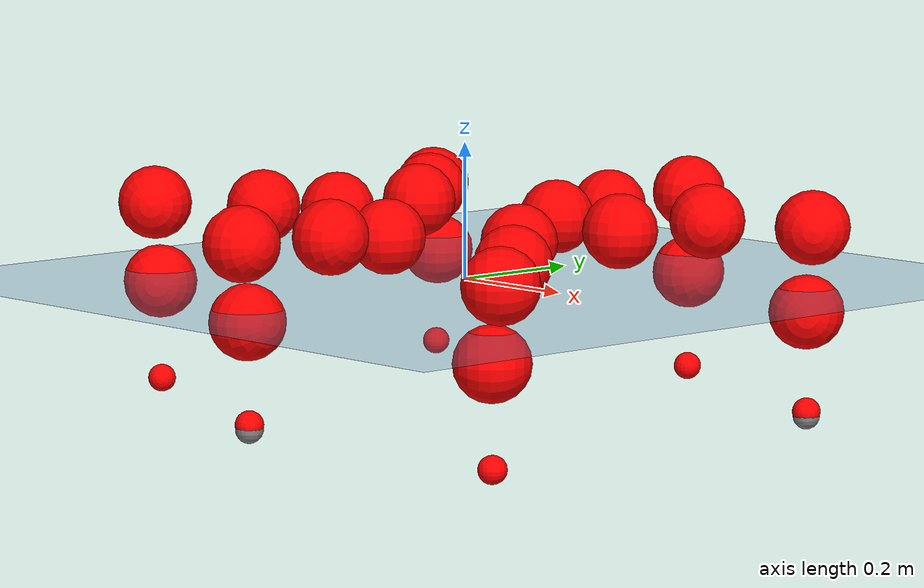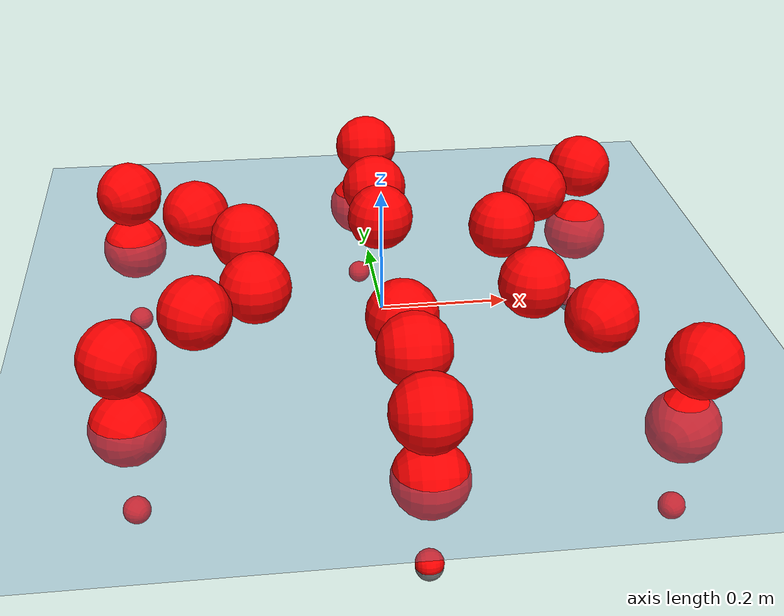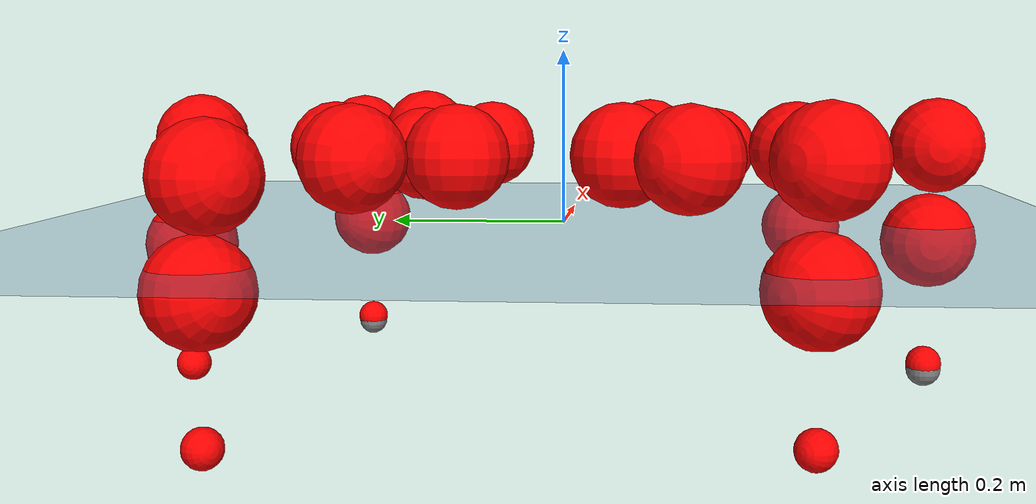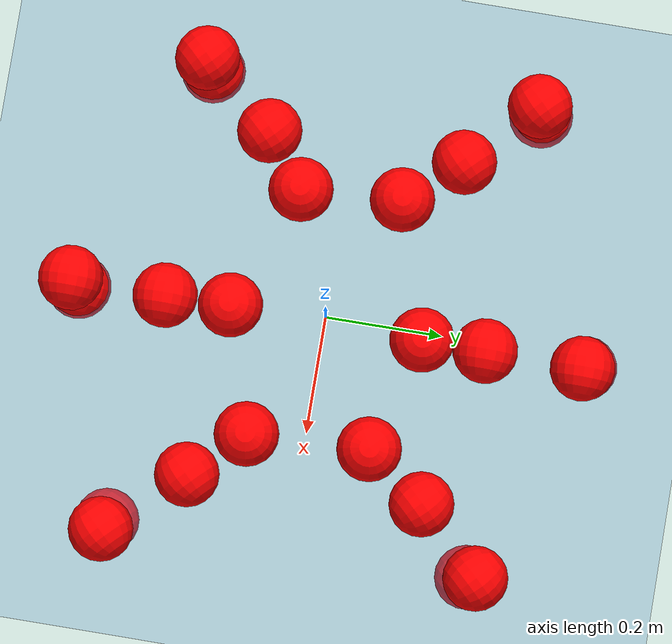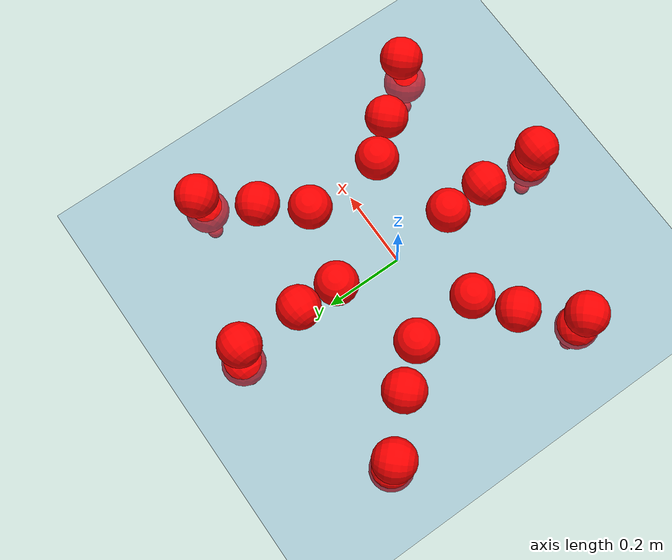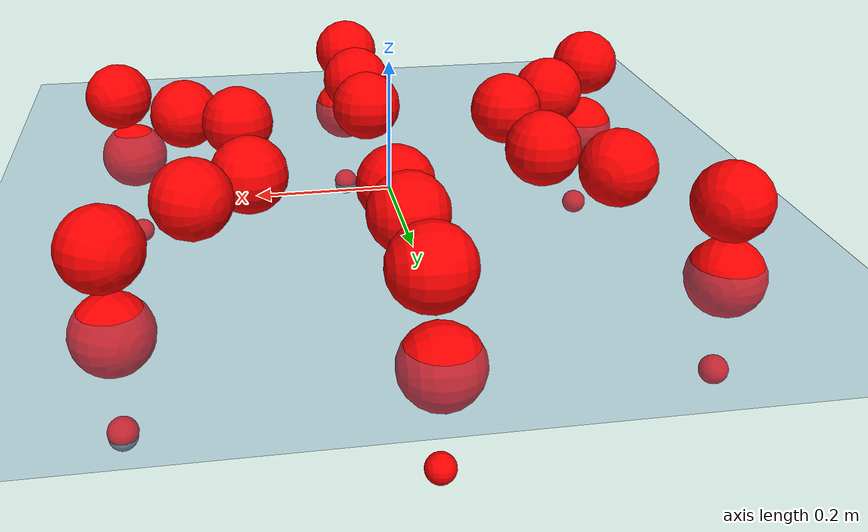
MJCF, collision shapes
<mujoco model="Golem">
  <compiler angle="radian" assetdir="assets" balanceinertia="true" inertiafromgeom="false"/>

  <option timestep="0.005" density="1.2" viscosity="2e-05"/>

  <size nkey="1"/>

  <visual>
    <quality shadowsize="8192"/>
    <map shadowclip="0.5"/>
  </visual>

  <default>
    <default class="/">
      <joint armature="0.01" damping="0.01" frictionloss="0.01"/>
      <geom contype="0" conaffinity="0" group="1" solref="-1000 -80"/>
      <site size="0.01 0.005 0.005" group="5"/>
      <general forcelimited="true" biastype="affine" gainprm="25" biasprm="0 -25 -0.5"/>
      <default class="visual">
        <geom type="mesh" group="2"/>
      </default>
      <default class="collision">
        <geom group="3"/>
      </default>
      <default class="foot">
        <geom size="0.01 0 0" condim="6" group="4" priority="1" solimp="0.015 1 0.01"/>
      </default>
      <default class="reward_collision_sphere">
        <geom group="5" rgba="1 0 0 1"/>
      </default>
    </default>
  </default>

  <asset>
    <texture type="skybox" colorspace="auto" name="//unnamed_texture_0" builtin="gradient" rgb1="0.95 0.95 0.95" rgb2="0.95 0.95 0.95" width="100" height="600"/>
    <texture type="2d" colorspace="auto" name="texplane" builtin="checker" rgb1="0.345 0.575 0.748" rgb2="0.345 0.575 0.748" markrgb="1 1 1" width="512" height="512"/>
    <material name="MatPlane" class="/" texture="texplane" texuniform="true" texrepeat="2 2" specular="0.9"/>
    <mesh name="body" class="/" file="body.stl" scale="0.001 0.001 0.001"/>
    <mesh name="coxa" class="/" file="coxa.stl" scale="0.001 0.001 0.001"/>
    <mesh name="femur" class="/" file="femur.stl" scale="0.001 0.001 0.001"/>
    <mesh name="tibia" class="/" file="tibia.stl" scale="0.001 0.001 0.001"/>
    <mesh name="tarsus" class="/" file="tarsus.stl" scale="0.001 0.001 0.001"/>
  </asset>

  <worldbody>
    <geom name="floor" class="/" size="100 100 0.125" type="plane" group="0" material="MatPlane"/>
    <light name="toplight_shadow" class="/" pos="0 0 5" dir="0.0990148 0.0990148 -0.990148" type="directional" ambient="0.04 0.04 0.04" diffuse="0.55 0.55 0.55" specular="0.12 0.12 0.12"/>
    <light name="toplight_fill" class="/" pos="0 0 5" dir="0.0990148 0.0990148 -0.990148" type="directional" castshadow="false" ambient="0.04 0.04 0.04" diffuse="0.3 0.3 0.3" specular="0.08 0.08 0.08"/>
    <body name="trunk" pos="0.0089824 0.0081701 -0.00298483" quat="0.999995 0.00259873 0.00129874 0.00127495">
      <inertial pos="-0.00885689 -0.00222404 0.0139269" quat="0.999123 -0.000715131 -0.0112811 0.0403271" mass="8.8508" diaginertia="0.0419637 0.0612467 0.0275219"/>
      <joint name="//unnamed_joint_0" type="free"/>
      <geom name="//unnamed_geom_1" class="/" pos="0 0 0.0819838" quat="1 0 0 0" type="mesh" rgba="0.9 0.9 0.9 1" mesh="body"/>
      <site name="imu" class="/" pos="0.11994 -0.0447738 0.124984" size="0.0137185"/>
      <camera name="track" class="/" pos="0 -2.95072 0" quat="0.707107 0.707107 0 0" mode="trackcom"/>
      <camera name="ego_camera" class="/" pos="0.176696 0 0.1281" quat="-0.5 -0.5 0.5 0.5"/>
      <body name="coxa_RR" pos="-0.236785 -0.111012 0.0937077" quat="0.381367 0.00191861 0.000456371 -0.924421">
        <inertial pos="-0.000440734 -0.00249341 -0.00517469" quat="0.999995 0.00115787 0.00257991 0.00148786" mass="0.491397" diaginertia="0.0488202 0.065567 0.0389558"/>
        <joint name="coxa_joint_RR" class="/" pos="0 0 0" axis="-0.000746384 -0.00141379 -0.999999" range="-3.11699 3.26101" armature="0.0157109" damping="0.0283975" frictionloss="0.0145926"/>
        <geom name="//unnamed_geom_2" class="/" type="mesh" rgba="0.2 0.2 0.2 1" mesh="coxa"/>
        <geom name="//unnamed_geom_3" class="reward_collision_sphere" size="0.0548741" pos="-0.040776 0 0"/>
        <body name="femur_RR" pos="0.0705553 -0.01497 0.00206979" quat="0.499677 -0.500121 0.500479 0.499722">
          <inertial pos="0.0141086 0.000727756 0.0152317" quat="0.997399 0.0610426 -0.034489 0.0167459" mass="0.58235" diaginertia="0.0526498 0.079865 0.0400187"/>
          <joint name="femur_joint_RR" class="/" pos="0 0 0" axis="-0.0263568 0.0228129 -0.999392" range="-3.05308 3.11733" armature="0.0139531" damping="0" frictionloss="0.0144546"/>
          <geom name="//unnamed_geom_4" class="/" type="mesh" rgba="0.9 0.9 0.9 1" mesh="femur"/>
          <geom name="//unnamed_geom_5" class="reward_collision_sphere" size="0.0548741"/>
          <body name="tibia_RR" pos="-0.00743032 -0.160451 0.0137964" quat="-0.00032307 1 -0.000348998 0.000173176">
            <inertial pos="0.000324657 0.000432328 0.0118832" quat="0.999181 0.00412075 0.0190835 -0.0354507" mass="0.382555" diaginertia="0.0386795 0.0490856 0.0280191"/>
            <joint name="tibia_joint_RR" class="/" pos="0 0 0" axis="0.0541295 0.0107245 0.998476" stiffness="0.0380529" range="-2.97381 3.14191" armature="0.0183857" damping="0.0141588" frictionloss="0.0209259"/>
            <geom name="//unnamed_geom_6" class="/" type="mesh" rgba="0.2 0.2 0.2 1" mesh="tibia"/>
            <geom name="//unnamed_geom_7" class="reward_collision_sphere" size="0.0548741"/>
            <body name="tarsus_RR" pos="0.118435 -0.00590689 0.0021846" quat="1 -9.37776e-05 6.24168e-05 0.00021412">
              <inertial pos="0.0877981 -6.40104e-05 0.000852318" quat="0.44573 0.51539 0.543735 0.489949" mass="0.462192" diaginertia="0.0473781 0.0775479 0.0325"/>
              <joint name="tarsus_joint_RR" class="/" pos="0 0 0" axis="-0.0484085 0.0552631 0.997298" range="-3.12061 3.31569" armature="0.0178694" damping="0.0160942" frictionloss="0.0107452"/>
              <geom name="//unnamed_geom_8" class="/" type="mesh" rgba="0.9 0.9 0.9 1" mesh="tarsus"/>
              <geom name="foot_1" class="foot" size="0.0145342" pos="0.15223 0 0" quat="0 -0.707107 0 0.707107"/>
              <geom name="//unnamed_geom_10" class="reward_collision_sphere" size="0.0548741"/>
              <geom name="//unnamed_geom_11" class="reward_collision_sphere" size="0.0205778" pos="0.146114 0 0"/>
              <site name="foot_1" class="foot" pos="0.15223 0 0" quat="0 -0.707107 0 0.707107" size="0.0137185"/>
            </body>
          </body>
        </body>
      </body>
      <body name="coxa_RM" pos="0.00230538 -0.208748 0.0811369" quat="0.706995 0.0068309 -0.00272045 -0.70718">
        <inertial pos="0.0111522 0.000125756 0.0129495" quat="0.998704 0.00256136 -0.0339107 0.0378708" mass="0.508328" diaginertia="0.0603635 0.0696796 0.0392999"/>
        <joint name="coxa_joint_RM" class="/" pos="0 0 0" axis="-0.00457327 -0.00642613 -0.999969" range="-3.07615 3.17548" armature="0.0121386" damping="0.0186696" frictionloss="0.0180682"/>
        <geom name="//unnamed_geom_12" class="/" type="mesh" rgba="0.2 0.2 0.2 1" mesh="coxa"/>
        <geom name="//unnamed_geom_13" class="reward_collision_sphere" size="0.0548741" pos="-0.040776 0 0"/>
        <body name="femur_RM" pos="0.0694384 0.00251873 0.0105457" quat="0.501985 -0.500139 0.501913 0.495939">
          <inertial pos="-0.0132708 0.000624534 -0.000281593" quat="0.997555 -0.00869227 -0.0164338 0.0673695" mass="0.545986" diaginertia="0.0444933 0.0803064 0.035962"/>
          <joint name="femur_joint_RM" class="/" pos="0 0 0" axis="0.0342278 0.0436118 -0.998462" stiffness="0.0401597" range="-3.13968 3.11828" armature="0.010202" damping="0" frictionloss="0.0147759"/>
          <geom name="//unnamed_geom_14" class="/" type="mesh" rgba="0.9 0.9 0.9 1" mesh="femur"/>
          <geom name="//unnamed_geom_15" class="reward_collision_sphere" size="0.0548741"/>
          <body name="tibia_RM" pos="-0.00548432 -0.160822 -0.00194419" quat="-0.000347612 1 -2.04059e-05 0.00050921">
            <inertial pos="0.0140477 -0.00599046 0.0082758" quat="0.99992 0.00613769 -0.00884785 0.00667815" mass="0.441821" diaginertia="0.0381754 0.0746272 0.0384602"/>
            <joint name="tibia_joint_RM" class="/" pos="0 0 0" axis="0.0360677 0.0267605 0.998991" stiffness="0.0174502" range="-3.14672 3.25623" armature="0.0138805" damping="0.0225529" frictionloss="0.0176066"/>
            <geom name="//unnamed_geom_16" class="/" type="mesh" rgba="0.2 0.2 0.2 1" mesh="tibia"/>
            <geom name="//unnamed_geom_17" class="reward_collision_sphere" size="0.0548741"/>
            <body name="tarsus_RM" pos="0.110845 -0.00613674 -0.00284624" quat="1 -0.000202407 3.07326e-05 -0.000257556">
              <inertial pos="0.085123 0.00475151 0.00135053" quat="0.512179 0.502855 0.494087 0.4906" mass="0.47656" diaginertia="0.0501689 0.0649822 0.0282462"/>
              <joint name="tarsus_joint_RM" class="/" pos="0 0 0" axis="0.0330531 -0.040356 0.998639" range="-3.15836 3.15658" armature="0.0141416" damping="0.0027241" frictionloss="0.0130261"/>
              <geom name="//unnamed_geom_18" class="/" type="mesh" rgba="0.9 0.9 0.9 1" mesh="tarsus"/>
              <geom name="foot_2" class="foot" size="0.0201884" pos="0.15223 0 0" quat="0 -0.707107 0 0.707107"/>
              <geom name="//unnamed_geom_20" class="reward_collision_sphere" size="0.0548741"/>
              <geom name="//unnamed_geom_21" class="reward_collision_sphere" size="0.0205778" pos="0.146114 0 0"/>
              <site name="foot_2" class="foot" pos="0.15223 0 0" quat="0 -0.707107 0 0.707107" size="0.0137185"/>
            </body>
          </body>
        </body>
      </body>
      <body name="coxa_RF" pos="0.241066 -0.134458 0.0882905" quat="0.923929 0.000266746 -9.23797e-05 -0.382564">
        <inertial pos="0.0148797 -0.00275367 -0.000145051" quat="0.998344 -0.0433189 -0.0112714 -0.0361408" mass="0.383702" diaginertia="0.0385215 0.0754316 0.0315444"/>
        <joint name="coxa_joint_RF" class="/" pos="0 0 0" axis="0.000670702 0.000169636 -1" range="-3.01487 3.15515" armature="0.00720416" damping="0.0280724" frictionloss="0.0171774"/>
        <geom name="//unnamed_geom_22" class="/" type="mesh" rgba="0.2 0.2 0.2 1" mesh="coxa"/>
        <geom name="//unnamed_geom_23" class="reward_collision_sphere" size="0.0548741" pos="-0.040776 0 0"/>
        <body name="femur_RF" pos="0.0796802 -0.00403512 -0.0130362" quat="0.501457 -0.500626 0.498139 0.499772">
          <inertial pos="-0.00790255 -0.0139906 -0.00751385" quat="0.999982 -0.00366761 -0.00418518 0.0021128" mass="0.583477" diaginertia="0.0418247 0.080896 0.0357171"/>
          <joint name="femur_joint_RF" class="/" pos="0 0 0" axis="0.0339618 -0.0271133 -0.999055" stiffness="0.0682115" range="-3.19096 3.32196" armature="0.0145407" damping="0" frictionloss="0.0164582"/>
          <geom name="//unnamed_geom_24" class="/" type="mesh" rgba="0.9 0.9 0.9 1" mesh="femur"/>
          <geom name="//unnamed_geom_25" class="reward_collision_sphere" size="0.0548741"/>
          <body name="tibia_RF" pos="0.00678328 -0.170106 -0.0106728" quat="0.000414101 1 6.95615e-05 -0.000162654">
            <inertial pos="0.0126385 0.00966391 -0.0115698" quat="0.999214 -0.0142666 -0.00501735 0.0366348" mass="0.456191" diaginertia="0.0462885 0.0694732 0.0348295"/>
            <joint name="tibia_joint_RF" class="/" pos="0 0 0" axis="0.0108414 0.0112677 0.999878" range="-3.15918 3.33618" armature="0.0141829" damping="0.0829811" frictionloss="0.0132597"/>
            <geom name="//unnamed_geom_26" class="/" type="mesh" rgba="0.2 0.2 0.2 1" mesh="tibia"/>
            <geom name="//unnamed_geom_27" class="reward_collision_sphere" size="0.0548741"/>
            <body name="tarsus_RF" pos="0.108492 -0.0127782 0.0122673" quat="0.999989 -0.00417426 -0.00127043 -0.00154027">
              <inertial pos="0.0826106 0.000288941 -3.35141e-05" quat="0.494003 0.497401 0.493381 0.514906" mass="0.475444" diaginertia="0.0420741 0.0564713 0.0387417"/>
              <joint name="tarsus_joint_RF" class="/" pos="0 0 0" axis="-0.0101933 0.025 0.999635" stiffness="0.0211669" range="-2.99113 3.16052" armature="0.0065824" damping="0" frictionloss="0.00345287"/>
              <geom name="//unnamed_geom_28" class="/" type="mesh" rgba="0.9 0.9 0.9 1" mesh="tarsus"/>
              <geom name="foot_3" class="foot" size="0.00686512" pos="0.15223 0 0" quat="0 -0.707107 0 0.707107"/>
              <geom name="//unnamed_geom_30" class="reward_collision_sphere" size="0.0548741"/>
              <geom name="//unnamed_geom_31" class="reward_collision_sphere" size="0.0205778" pos="0.146114 0 0"/>
              <site name="foot_3" class="foot" pos="0.15223 0 0" quat="0 -0.707107 0 0.707107" size="0.0137185"/>
            </body>
          </body>
        </body>
      </body>
      <body name="coxa_LR" pos="-0.246903 0.117852 0.0914613" quat="0.386583 0.00441794 0.00191374 0.922242">
        <inertial pos="0.00245158 -0.00377891 0.0144573" quat="0.998613 0.0392 0.0310758 0.0164304" mass="0.705436" diaginertia="0.0561376 0.0825988 0.039678"/>
        <joint name="coxa_joint_LR" class="/" pos="0 0 0" axis="0.00221811 -0.00396818 -0.99999" range="-3.04859 2.84715" armature="0.0065262" damping="0" frictionloss="0.0236929"/>
        <geom name="//unnamed_geom_32" class="/" type="mesh" rgba="0.2 0.2 0.2 1" mesh="coxa"/>
        <geom name="//unnamed_geom_33" class="reward_collision_sphere" size="0.0548741" pos="-0.040776 0 0"/>
        <body name="femur_LR" pos="0.0809004 -0.00865238 0.00132482" quat="0.499998 -0.499784 0.500138 0.50008">
          <inertial pos="0.000620069 0.00124283 0.00157926" quat="0.999217 -0.0102626 0.0381572 -0.00207675" mass="0.569138" diaginertia="0.05475 0.0622806 0.0372452"/>
          <joint name="femur_joint_LR" class="/" pos="0 0 0" axis="-0.0233983 -0.00294895 0.999722" stiffness="0.0433797" range="-3.15083 3.34868" armature="0.00783803" damping="0" frictionloss="0.0168703"/>
          <geom name="//unnamed_geom_34" class="/" type="mesh" rgba="0.9 0.9 0.9 1" mesh="femur"/>
          <geom name="//unnamed_geom_35" class="reward_collision_sphere" size="0.0548741"/>
          <body name="tibia_LR" pos="0.0113557 -0.160301 0.00444782" quat="0.00362545 0.999986 0.00182134 0.00334319">
            <inertial pos="-0.0086767 -0.0135455 9.75966e-06" quat="0.998527 0.044262 0.00821683 -0.0302859" mass="0.587737" diaginertia="0.0382886 0.0609664 0.0413544"/>
            <joint name="tibia_joint_LR" class="/" pos="0 0 0" axis="0.00535866 0.00498229 -0.999973" range="-3.14856 3.11941" armature="0.0101097" damping="0" frictionloss="0.00834413"/>
            <geom name="//unnamed_geom_36" class="/" type="mesh" rgba="0.2 0.2 0.2 1" mesh="tibia"/>
            <geom name="//unnamed_geom_37" class="reward_collision_sphere" size="0.0548741"/>
            <body name="tarsus_LR" pos="0.107085 0.00521278 0.00707356" quat="0.999995 0.00158258 0.00280225 0.000207494">
              <inertial pos="0.0885749 0.00864205 0.00522824" quat="0.48514 0.521422 0.510582 0.48173" mass="0.629935" diaginertia="0.0570783 0.084248 0.0409922"/>
              <joint name="tarsus_joint_LR" class="/" pos="0 0 0" axis="-0.00685861 -0.00104503 -0.999976" range="-3.08657 3.20352" armature="0.0243617" damping="0.0113689" frictionloss="0.0173314"/>
              <geom name="//unnamed_geom_38" class="/" type="mesh" rgba="0.9 0.9 0.9 1" mesh="tarsus"/>
              <geom name="foot_4" class="foot" size="0.0119025" pos="0.15223 0 0" quat="0.707107 0 -0.707107 0"/>
              <geom name="//unnamed_geom_40" class="reward_collision_sphere" size="0.0548741"/>
              <geom name="//unnamed_geom_41" class="reward_collision_sphere" size="0.0205778" pos="0.146114 0 0"/>
              <site name="foot_4" class="foot" pos="0.15223 0 0" quat="0.707107 0 -0.707107 0" size="0.0137185"/>
            </body>
          </body>
        </body>
      </body>
      <body name="coxa_LM" pos="0.00907113 0.199767 0.0807739" quat="0.708889 0.0010963 0.00736254 0.705281">
        <inertial pos="-0.0114914 0.012553 0.00812721" quat="0.998397 -0.00832855 -0.0251409 -0.0500223" mass="0.501915" diaginertia="0.0478388 0.0615813 0.0312409"/>
        <joint name="coxa_joint_LM" class="/" pos="0 0 0" axis="0.00359049 -0.00761093 -0.999965" range="-3.1473 3.14899" armature="0.00401369" damping="0.0452115" frictionloss="0.0103573"/>
        <geom name="//unnamed_geom_42" class="/" type="mesh" rgba="0.2 0.2 0.2 1" mesh="coxa"/>
        <geom name="//unnamed_geom_43" class="reward_collision_sphere" size="0.0548741" pos="-0.040776 0 0"/>
        <body name="femur_LM" pos="0.0666306 -0.00123638 0.00711264" quat="0.501633 -0.499469 0.502749 0.496124">
          <inertial pos="0.0111251 -0.00101629 0.0126429" quat="0.999172 -0.0092079 -0.0392931 -0.00511914" mass="0.384101" diaginertia="0.0425533 0.0600528 0.0302955"/>
          <joint name="femur_joint_LM" class="/" pos="0 0 0" axis="-0.000961804 0.00150025 0.999998" range="-3.31375 3.05308" armature="0.00719348" damping="0.0392664" frictionloss="0.0142487"/>
          <geom name="//unnamed_geom_44" class="/" type="mesh" rgba="0.9 0.9 0.9 1" mesh="femur"/>
          <geom name="//unnamed_geom_45" class="reward_collision_sphere" size="0.0548741"/>
          <body name="tibia_LM" pos="-0.00863827 -0.164697 -0.00113305" quat="-0.00163398 0.999997 -0.000931747 -0.00130071">
            <inertial pos="-0.0141581 -0.0148055 -0.0152058" quat="0.999995 0.00236888 0.00223475 0.000497817" mass="0.51385" diaginertia="0.0506572 0.0813909 0.0304388"/>
            <joint name="tibia_joint_LM" class="/" pos="0 0 0" axis="-0.0263053 -0.0278904 -0.999265" stiffness="0.049347" range="-3.22657 3.15538" armature="0.00708176" damping="0" frictionloss="0.0208704"/>
            <geom name="//unnamed_geom_46" class="/" type="mesh" rgba="0.2 0.2 0.2 1" mesh="tibia"/>
            <geom name="//unnamed_geom_47" class="reward_collision_sphere" size="0.0548741"/>
            <body name="tarsus_LM" pos="0.12519 0.011882 -0.0109932" quat="0.99999 -0.00094986 0.00301501 0.00322975">
              <inertial pos="0.076012 -0.00609019 -0.00852331" quat="0.504761 0.501948 0.499706 0.493516" mass="0.426843" diaginertia="0.0444842 0.0460916 0.0305272"/>
              <joint name="tarsus_joint_LM" class="/" pos="0 0 0" axis="0.0523422 -0.0159551 -0.998502" range="-2.82046 3.1003" armature="0.0133136" damping="0" frictionloss="0.0144506"/>
              <geom name="//unnamed_geom_48" class="/" type="mesh" rgba="0.9 0.9 0.9 1" mesh="tarsus"/>
              <geom name="foot_5" class="foot" size="0.014337" pos="0.15223 0 0" quat="0.707107 0 -0.707107 0"/>
              <geom name="//unnamed_geom_50" class="reward_collision_sphere" size="0.0548741"/>
              <geom name="//unnamed_geom_51" class="reward_collision_sphere" size="0.0205778" pos="0.146114 0 0"/>
              <site name="foot_5" class="foot" pos="0.15223 0 0" quat="0.707107 0 -0.707107 0" size="0.0137185"/>
            </body>
          </body>
        </body>
      </body>
      <body name="coxa_LF" pos="0.232937 0.12979 0.0838026" quat="0.922917 -0.00592473 -0.000243951 0.384954">
        <inertial pos="-0.000600028 -0.0144587 4.49034e-05" quat="0.999996 0.0026094 0.00053628 -0.00049757" mass="0.479588" diaginertia="0.0419353 0.0496151 0.0283576"/>
        <joint name="coxa_joint_LF" class="/" pos="0 0 0" axis="-0.0409717 -0.0166153 -0.999022" range="-3.11645 3.11511" armature="0.00360963" damping="0.00134025" frictionloss="0.0106106"/>
        <geom name="//unnamed_geom_52" class="/" type="mesh" rgba="0.2 0.2 0.2 1" mesh="coxa"/>
        <geom name="//unnamed_geom_53" class="reward_collision_sphere" size="0.0548741" pos="-0.040776 0 0"/>
        <body name="femur_LF" pos="0.0850218 0.0159305 0.013556" quat="0.501748 -0.50355 0.496712 0.49796">
          <inertial pos="-0.00938052 0.00316001 -0.0151725" quat="0.998149 -0.0158597 -0.0448987 -0.0378259" mass="0.506545" diaginertia="0.0514868 0.0565039 0.0350978"/>
          <joint name="femur_joint_LF" class="/" pos="0 0 0" axis="-0.0474903 -0.0232089 0.998602" stiffness="0.0537586" range="-3.14838 3.41864" armature="0.0150799" damping="0.0533061" frictionloss="0.0110846"/>
          <geom name="//unnamed_geom_54" class="/" type="mesh" rgba="0.9 0.9 0.9 1" mesh="femur"/>
          <geom name="//unnamed_geom_55" class="reward_collision_sphere" size="0.0548741"/>
          <body name="tibia_LF" pos="0.00995783 -0.152124 -0.000282593" quat="0.00380969 0.999981 0.00194586 0.00444882">
            <inertial pos="-0.00361901 0.0135525 -0.000553217" quat="0.99992 0.00544164 0.00119201 0.0113486" mass="0.522835" diaginertia="0.051434 0.070884 0.0370804"/>
            <joint name="tibia_joint_LF" class="/" pos="0 0 0" axis="-0.0553002 0.0154295 -0.998351" stiffness="0.00380238" range="-2.90831 3.11901" armature="0.00797681" damping="0.0135274" frictionloss="0.00484721"/>
            <geom name="//unnamed_geom_56" class="/" type="mesh" rgba="0.2 0.2 0.2 1" mesh="tibia"/>
            <geom name="//unnamed_geom_57" class="reward_collision_sphere" size="0.0548741"/>
            <body name="tarsus_LF" pos="0.12224 -0.00872637 0.00638633" quat="0.99997 0.00725712 -0.00147635 0.00232712">
              <inertial pos="0.0905435 0.00245857 0.000649817" quat="0.495669 0.497522 0.504056 0.502704" mass="0.496289" diaginertia="0.0490681 0.0728133 0.0391805"/>
              <joint name="tarsus_joint_LF" class="/" pos="0 0 0" axis="0.0647308 -0.0396135 -0.997116" range="-3.2473 3.36788" armature="0.0101432" damping="0.070592" frictionloss="0.00873705"/>
              <geom name="//unnamed_geom_58" class="/" type="mesh" rgba="0.9 0.9 0.9 1" mesh="tarsus"/>
              <geom name="foot_6" class="foot" size="0.0196623" pos="0.15223 0 0" quat="0.707107 0 -0.707107 0"/>
              <geom name="//unnamed_geom_60" class="reward_collision_sphere" size="0.0548741"/>
              <geom name="//unnamed_geom_61" class="reward_collision_sphere" size="0.0205778" pos="0.146114 0 0"/>
              <site name="foot_6" class="foot" pos="0.15223 0 0" quat="0.707107 0 -0.707107 0" size="0.0137185"/>
            </body>
          </body>
        </body>
      </body>
    </body>
  </worldbody>

  <contact>
    <pair class="/" geom1="floor" geom2="foot_1" name="//unnamed_contact_0"/>
    <pair class="/" geom1="floor" geom2="foot_2" name="//unnamed_contact_1"/>
    <pair class="/" geom1="floor" geom2="foot_3" name="//unnamed_contact_2"/>
    <pair class="/" geom1="floor" geom2="foot_4" name="//unnamed_contact_3"/>
    <pair class="/" geom1="floor" geom2="foot_5" name="//unnamed_contact_4"/>
    <pair class="/" geom1="floor" geom2="foot_6" name="//unnamed_contact_5"/>
  </contact>

  <actuator>
    <general name="coxa_joint_RR" class="/" joint="coxa_joint_RR" forcerange="-15.1525 15.1525" gainprm="29.4799" biasprm="0 -29.4799 -0.831614"/>
    <general name="femur_joint_RR" class="/" joint="femur_joint_RR" forcerange="-7.45771 7.45771" gainprm="29.4799" biasprm="0 -29.4799 -0.831614"/>
    <general name="tibia_joint_RR" class="/" joint="tibia_joint_RR" forcerange="-15.5775 15.5775" gainprm="29.4799" biasprm="0 -29.4799 -0.831614"/>
    <general name="tarsus_joint_RR" class="/" joint="tarsus_joint_RR" forcerange="-7.11594 7.11594" gainprm="29.4799" biasprm="0 -29.4799 -0.831614"/>
    <general name="coxa_joint_RM" class="/" joint="coxa_joint_RM" forcerange="-10.1908 10.1908" gainprm="29.4799" biasprm="0 -29.4799 -0.831614"/>
    <general name="femur_joint_RM" class="/" joint="femur_joint_RM" forcerange="-9.78246 9.78246" gainprm="29.4799" biasprm="0 -29.4799 -0.831614"/>
    <general name="tibia_joint_RM" class="/" joint="tibia_joint_RM" forcerange="-14.753 14.753" gainprm="29.4799" biasprm="0 -29.4799 -0.831614"/>
    <general name="tarsus_joint_RM" class="/" joint="tarsus_joint_RM" forcerange="-4.60835 4.60835" gainprm="29.4799" biasprm="0 -29.4799 -0.831614"/>
    <general name="coxa_joint_RF" class="/" joint="coxa_joint_RF" forcerange="-8.7187 8.7187" gainprm="29.4799" biasprm="0 -29.4799 -0.831614"/>
    <general name="femur_joint_RF" class="/" joint="femur_joint_RF" forcerange="-10.0928 10.0928" gainprm="29.4799" biasprm="0 -29.4799 -0.831614"/>
    <general name="tibia_joint_RF" class="/" joint="tibia_joint_RF" forcerange="-4.99652 4.99652" gainprm="29.4799" biasprm="0 -29.4799 -0.831614"/>
    <general name="tarsus_joint_RF" class="/" joint="tarsus_joint_RF" forcerange="-7.54569 7.54569" gainprm="29.4799" biasprm="0 -29.4799 -0.831614"/>
    <general name="coxa_joint_LR" class="/" joint="coxa_joint_LR" forcerange="-10.3631 10.3631" gainprm="29.4799" biasprm="0 -29.4799 -0.831614"/>
    <general name="femur_joint_LR" class="/" joint="femur_joint_LR" forcerange="-14.2418 14.2418" gainprm="29.4799" biasprm="0 -29.4799 -0.831614"/>
    <general name="tibia_joint_LR" class="/" joint="tibia_joint_LR" forcerange="-12.4463 12.4463" gainprm="29.4799" biasprm="0 -29.4799 -0.831614"/>
    <general name="tarsus_joint_LR" class="/" joint="tarsus_joint_LR" forcerange="-13.464 13.464" gainprm="29.4799" biasprm="0 -29.4799 -0.831614"/>
    <general name="coxa_joint_LM" class="/" joint="coxa_joint_LM" forcerange="-12.4481 12.4481" gainprm="29.4799" biasprm="0 -29.4799 -0.831614"/>
    <general name="femur_joint_LM" class="/" joint="femur_joint_LM" forcerange="-11.6527 11.6527" gainprm="29.4799" biasprm="0 -29.4799 -0.831614"/>
    <general name="tibia_joint_LM" class="/" joint="tibia_joint_LM" forcerange="-13.7746 13.7746" gainprm="29.4799" biasprm="0 -29.4799 -0.831614"/>
    <general name="tarsus_joint_LM" class="/" joint="tarsus_joint_LM" forcerange="-11.2631 11.2631" gainprm="29.4799" biasprm="0 -29.4799 -0.831614"/>
    <general name="coxa_joint_LF" class="/" joint="coxa_joint_LF" forcerange="-12.0689 12.0689" gainprm="29.4799" biasprm="0 -29.4799 -0.831614"/>
    <general name="femur_joint_LF" class="/" joint="femur_joint_LF" forcerange="-8.5162 8.5162" gainprm="29.4799" biasprm="0 -29.4799 -0.831614"/>
    <general name="tibia_joint_LF" class="/" joint="tibia_joint_LF" forcerange="-6.51436 6.51436" gainprm="29.4799" biasprm="0 -29.4799 -0.831614"/>
    <general name="tarsus_joint_LF" class="/" joint="tarsus_joint_LF" forcerange="-12.3804 12.3804" gainprm="29.4799" biasprm="0 -29.4799 -0.831614"/>
  </actuator>

  <sensor>
    <gyro site="imu" name="imu_angular_velocity"/>
    <velocimeter site="imu" name="imu_linear_velocity"/>
    <framelinvel objtype="site" objname="foot_1" name="foot_1_global_linear_velocity"/>
    <framelinvel objtype="site" objname="foot_2" name="foot_2_global_linear_velocity"/>
    <framelinvel objtype="site" objname="foot_3" name="foot_3_global_linear_velocity"/>
    <framelinvel objtype="site" objname="foot_4" name="foot_4_global_linear_velocity"/>
    <framelinvel objtype="site" objname="foot_5" name="foot_5_global_linear_velocity"/>
    <framelinvel objtype="site" objname="foot_6" name="foot_6_global_linear_velocity"/>
  </sensor>

  <keyframe>
    <key name="home" qpos="0 0 0.1457 1 0 0 0 0 0 0 0 0 0 0 0 0 0 0 0 0 0 0 0 0 0 0 0 0 0 0 0"/>
  </keyframe>
</mujoco>
